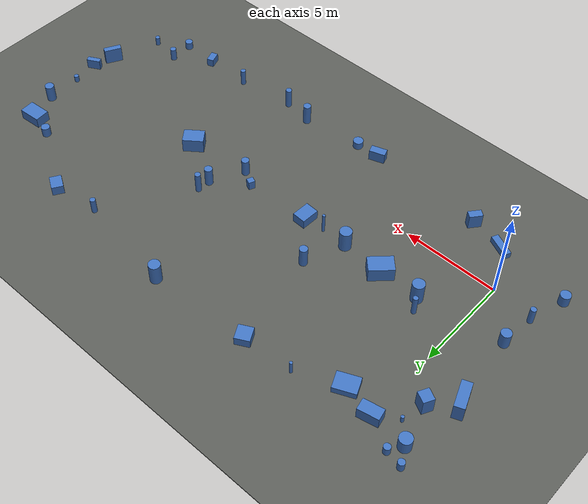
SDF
<sdf version="1.9">
 <world name="default">
  <model name="track_feature">
   <static>true</static>
   <link name="feature_link">
    <collision name="feat_box_1_collision">
     <pose>24.670382 7.119994 0.289913 0.000000 0.000000 0.071686</pose>
     <geometry><box><size>1.201036 0.794350 0.579826</size></box></geometry>
    </collision>
    <visual name="feat_box_1_visual">
     <pose>24.670382 7.119994 0.289913 0.000000 0.000000 0.071686</pose>
     <geometry><box><size>1.201036 0.794350 0.579826</size></box></geometry>
     <material><ambient>0.25 0.45 0.75 1</ambient><diffuse>0.25 0.45 0.75 1</diffuse></material>
    </visual>
    <collision name="feat_box_3_collision">
     <pose>-1.304008 7.081642 0.461759 0.000000 0.000000 -2.052050</pose>
     <geometry><box><size>0.569174 0.608548 0.923518</size></box></geometry>
    </collision>
    <visual name="feat_box_3_visual">
     <pose>-1.304008 7.081642 0.461759 0.000000 0.000000 -2.052050</pose>
     <geometry><box><size>0.569174 0.608548 0.923518</size></box></geometry>
     <material><ambient>0.25 0.45 0.75 1</ambient><diffuse>0.25 0.45 0.75 1</diffuse></material>
    </visual>
    <collision name="feat_box_4_collision">
     <pose>1.746492 8.575024 0.182613 0.000000 0.000000 0.418718</pose>
     <geometry><box><size>1.158032 0.896006 0.365227</size></box></geometry>
    </collision>
    <visual name="feat_box_4_visual">
     <pose>1.746492 8.575024 0.182613 0.000000 0.000000 0.418718</pose>
     <geometry><box><size>1.158032 0.896006 0.365227</size></box></geometry>
     <material><ambient>0.25 0.45 0.75 1</ambient><diffuse>0.25 0.45 0.75 1</diffuse></material>
    </visual>
    <collision name="feat_box_8_collision">
     <pose>19.882940 9.591676 0.262900 0.000000 0.000000 -0.544129</pose>
     <geometry><box><size>0.775148 0.607738 0.525799</size></box></geometry>
    </collision>
    <visual name="feat_box_8_visual">
     <pose>19.882940 9.591676 0.262900 0.000000 0.000000 -0.544129</pose>
     <geometry><box><size>0.775148 0.607738 0.525799</size></box></geometry>
     <material><ambient>0.25 0.45 0.75 1</ambient><diffuse>0.25 0.45 0.75 1</diffuse></material>
    </visual>
    <collision name="feat_box_10_collision">
     <pose>20.884848 -2.518587 0.225866 0.000000 0.000000 1.904871</pose>
     <geometry><box><size>0.613634 0.374339 0.451733</size></box></geometry>
    </collision>
    <visual name="feat_box_10_visual">
     <pose>20.884848 -2.518587 0.225866 0.000000 0.000000 1.904871</pose>
     <geometry><box><size>0.613634 0.374339 0.451733</size></box></geometry>
     <material><ambient>0.25 0.45 0.75 1</ambient><diffuse>0.25 0.45 0.75 1</diffuse></material>
    </visual>
    <collision name="feat_box_12_collision">
     <pose>12.782914 2.903730 0.249128 0.000000 0.000000 -0.400176</pose>
     <geometry><box><size>0.319425 0.347119 0.498255</size></box></geometry>
    </collision>
    <visual name="feat_box_12_visual">
     <pose>12.782914 2.903730 0.249128 0.000000 0.000000 -0.400176</pose>
     <geometry><box><size>0.319425 0.347119 0.498255</size></box></geometry>
     <material><ambient>0.25 0.45 0.75 1</ambient><diffuse>0.25 0.45 0.75 1</diffuse></material>
    </visual>
    <collision name="feat_box_14_collision">
     <pose>9.296915 -2.962423 0.303799 0.000000 0.000000 0.321960</pose>
     <geometry><box><size>0.841646 0.431589 0.607598</size></box></geometry>
    </collision>
    <visual name="feat_box_14_visual">
     <pose>9.296915 -2.962423 0.303799 0.000000 0.000000 0.321960</pose>
     <geometry><box><size>0.841646 0.431589 0.607598</size></box></geometry>
     <material><ambient>0.25 0.45 0.75 1</ambient><diffuse>0.25 0.45 0.75 1</diffuse></material>
    </visual>
    <collision name="feat_box_15_collision">
     <pose>9.325273 2.667936 0.261766 0.000000 0.000000 1.524873</pose>
     <geometry><box><size>0.968476 0.715589 0.523532</size></box></geometry>
    </collision>
    <visual name="feat_box_15_visual">
     <pose>9.325273 2.667936 0.261766 0.000000 0.000000 1.524873</pose>
     <geometry><box><size>0.968476 0.715589 0.523532</size></box></geometry>
     <material><ambient>0.25 0.45 0.75 1</ambient><diffuse>0.25 0.45 0.75 1</diffuse></material>
    </visual>
    <collision name="feat_box_16_collision">
     <pose>4.525236 2.805219 0.394589 0.000000 0.000000 -2.368869</pose>
     <geometry><box><size>1.281059 0.846166 0.789179</size></box></geometry>
    </collision>
    <visual name="feat_box_16_visual">
     <pose>4.525236 2.805219 0.394589 0.000000 0.000000 -2.368869</pose>
     <geometry><box><size>1.281059 0.846166 0.789179</size></box></geometry>
     <material><ambient>0.25 0.45 0.75 1</ambient><diffuse>0.25 0.45 0.75 1</diffuse></material>
    </visual>
    <collision name="feat_box_22_collision">
     <pose>-2.432826 6.007820 0.485832 0.000000 0.000000 1.939342</pose>
     <geometry><box><size>1.375204 0.515239 0.971664</size></box></geometry>
    </collision>
    <visual name="feat_box_22_visual">
     <pose>-2.432826 6.007820 0.485832 0.000000 0.000000 1.939342</pose>
     <geometry><box><size>1.375204 0.515239 0.971664</size></box></geometry>
     <material><ambient>0.25 0.45 0.75 1</ambient><diffuse>0.25 0.45 0.75 1</diffuse></material>
    </visual>
    <collision name="feat_box_24_collision">
     <pose>1.184153 -2.251332 0.168702 0.000000 0.000000 2.707028</pose>
     <geometry><box><size>1.219810 0.376309 0.337403</size></box></geometry>
    </collision>
    <visual name="feat_box_24_visual">
     <pose>1.184153 -2.251332 0.168702 0.000000 0.000000 2.707028</pose>
     <geometry><box><size>1.219810 0.376309 0.337403</size></box></geometry>
     <material><ambient>0.25 0.45 0.75 1</ambient><diffuse>0.25 0.45 0.75 1</diffuse></material>
    </visual>
    <collision name="feat_box_26_collision">
     <pose>0.078908 9.018379 0.329072 0.000000 0.000000 -2.935244</pose>
     <geometry><box><size>1.074119 0.600067 0.658145</size></box></geometry>
    </collision>
    <visual name="feat_box_26_visual">
     <pose>0.078908 9.018379 0.329072 0.000000 0.000000 -2.935244</pose>
     <geometry><box><size>1.074119 0.600067 0.658145</size></box></geometry>
     <material><ambient>0.25 0.45 0.75 1</ambient><diffuse>0.25 0.45 0.75 1</diffuse></material>
    </visual>
    <collision name="feat_box_27_collision">
     <pose>25.520080 2.218776 0.282142 0.000000 0.000000 2.057424</pose>
     <geometry><box><size>0.278405 0.743167 0.564284</size></box></geometry>
    </collision>
    <visual name="feat_box_27_visual">
     <pose>25.520080 2.218776 0.282142 0.000000 0.000000 2.057424</pose>
     <geometry><box><size>0.278405 0.743167 0.564284</size></box></geometry>
     <material><ambient>0.25 0.45 0.75 1</ambient><diffuse>0.25 0.45 0.75 1</diffuse></material>
    </visual>
    <collision name="feat_box_30_collision">
     <pose>25.172809 1.107790 0.434652 0.000000 0.000000 -2.059937</pose>
     <geometry><box><size>0.949348 0.307129 0.869305</size></box></geometry>
    </collision>
    <visual name="feat_box_30_visual">
     <pose>25.172809 1.107790 0.434652 0.000000 0.000000 -2.059937</pose>
     <geometry><box><size>0.949348 0.307129 0.869305</size></box></geometry>
     <material><ambient>0.25 0.45 0.75 1</ambient><diffuse>0.25 0.45 0.75 1</diffuse></material>
    </visual>
    <collision name="feat_box_38_collision">
     <pose>16.936390 2.815702 0.392116 0.000000 0.000000 0.655062</pose>
     <geometry><box><size>1.099740 0.798922 0.784232</size></box></geometry>
    </collision>
    <visual name="feat_box_38_visual">
     <pose>16.936390 2.815702 0.392116 0.000000 0.000000 0.655062</pose>
     <geometry><box><size>1.099740 0.798922 0.784232</size></box></geometry>
     <material><ambient>0.25 0.45 0.75 1</ambient><diffuse>0.25 0.45 0.75 1</diffuse></material>
    </visual>
    <collision name="feat_box_42_collision">
     <pose>6.700082 9.763759 0.243580 0.000000 0.000000 2.055882</pose>
     <geometry><box><size>0.780557 0.762318 0.487160</size></box></geometry>
    </collision>
    <visual name="feat_box_42_visual">
     <pose>6.700082 9.763759 0.243580 0.000000 0.000000 2.055882</pose>
     <geometry><box><size>0.780557 0.762318 0.487160</size></box></geometry>
     <material><ambient>0.25 0.45 0.75 1</ambient><diffuse>0.25 0.45 0.75 1</diffuse></material>
    </visual>
    <collision name="feat_box_45_collision">
     <pose>3.046522 -2.645402 0.409731 0.000000 0.000000 -0.673406</pose>
     <geometry><box><size>0.386037 0.688391 0.819462</size></box></geometry>
    </collision>
    <visual name="feat_box_45_visual">
     <pose>3.046522 -2.645402 0.409731 0.000000 0.000000 -0.673406</pose>
     <geometry><box><size>0.386037 0.688391 0.819462</size></box></geometry>
     <material><ambient>0.25 0.45 0.75 1</ambient><diffuse>0.25 0.45 0.75 1</diffuse></material>
    </visual>
    <collision name="feat_cyl_2_collision">
     <pose>6.796907 2.657277 0.569344 0.000000 0.000000 0.000000</pose>
     <geometry><cylinder><radius>0.313919</radius><length>1.138689</length></cylinder></geometry>
    </collision>
    <visual name="feat_cyl_2_visual">
     <pose>6.796907 2.657277 0.569344 0.000000 0.000000 0.000000</pose>
     <geometry><cylinder><radius>0.313919</radius><length>1.138689</length></cylinder></geometry>
     <material><ambient>0.25 0.45 0.75 1</ambient><diffuse>0.25 0.45 0.75 1</diffuse></material>
    </visual>
    <collision name="feat_cyl_5_collision">
     <pose>22.762982 -1.287806 0.351089 0.000000 0.000000 0.000000</pose>
     <geometry><cylinder><radius>0.162722</radius><length>0.702178</length></cylinder></geometry>
    </collision>
    <visual name="feat_cyl_5_visual">
     <pose>22.762982 -1.287806 0.351089 0.000000 0.000000 0.000000</pose>
     <geometry><cylinder><radius>0.162722</radius><length>0.702178</length></cylinder></geometry>
     <material><ambient>0.25 0.45 0.75 1</ambient><diffuse>0.25 0.45 0.75 1</diffuse></material>
    </visual>
    <collision name="feat_cyl_6_collision">
     <pose>22.810680 -2.553603 0.216048 0.000000 0.000000 0.000000</pose>
     <geometry><cylinder><radius>0.207859</radius><length>0.432096</length></cylinder></geometry>
    </collision>
    <visual name="feat_cyl_6_visual">
     <pose>22.810680 -2.553603 0.216048 0.000000 0.000000 0.000000</pose>
     <geometry><cylinder><radius>0.207859</radius><length>0.432096</length></cylinder></geometry>
     <material><ambient>0.25 0.45 0.75 1</ambient><diffuse>0.25 0.45 0.75 1</diffuse></material>
    </visual>
    <collision name="feat_cyl_7_collision">
     <pose>25.304169 5.510014 0.454906 0.000000 0.000000 0.000000</pose>
     <geometry><cylinder><radius>0.244063</radius><length>0.909812</length></cylinder></geometry>
    </collision>
    <visual name="feat_cyl_7_visual">
     <pose>25.304169 5.510014 0.454906 0.000000 0.000000 0.000000</pose>
     <geometry><cylinder><radius>0.244063</radius><length>0.909812</length></cylinder></geometry>
     <material><ambient>0.25 0.45 0.75 1</ambient><diffuse>0.25 0.45 0.75 1</diffuse></material>
    </visual>
    <collision name="feat_cyl_9_collision">
     <pose>24.348142 -1.549119 0.248078 0.000000 0.000000 0.000000</pose>
     <geometry><cylinder><radius>0.124656</radius><length>0.496155</length></cylinder></geometry>
    </collision>
    <visual name="feat_cyl_9_visual">
     <pose>24.348142 -1.549119 0.248078 0.000000 0.000000 0.000000</pose>
     <geometry><cylinder><radius>0.124656</radius><length>0.496155</length></cylinder></geometry>
     <material><ambient>0.25 0.45 0.75 1</ambient><diffuse>0.25 0.45 0.75 1</diffuse></material>
    </visual>
    <collision name="feat_cyl_11_collision">
     <pose>25.381425 3.652828 0.181691 0.000000 0.000000 0.000000</pose>
     <geometry><cylinder><radius>0.127842</radius><length>0.363383</length></cylinder></geometry>
    </collision>
    <visual name="feat_cyl_11_visual">
     <pose>25.381425 3.652828 0.181691 0.000000 0.000000 0.000000</pose>
     <geometry><cylinder><radius>0.127842</radius><length>0.363383</length></cylinder></geometry>
     <material><ambient>0.25 0.45 0.75 1</ambient><diffuse>0.25 0.45 0.75 1</diffuse></material>
    </visual>
    <collision name="feat_cyl_13_collision">
     <pose>18.424620 -2.463162 0.456217 0.000000 0.000000 0.000000</pose>
     <geometry><cylinder><radius>0.134088</radius><length>0.912434</length></cylinder></geometry>
    </collision>
    <visual name="feat_cyl_13_visual">
     <pose>18.424620 -2.463162 0.456217 0.000000 0.000000 0.000000</pose>
     <geometry><cylinder><radius>0.134088</radius><length>0.912434</length></cylinder></geometry>
     <material><ambient>0.25 0.45 0.75 1</ambient><diffuse>0.25 0.45 0.75 1</diffuse></material>
    </visual>
    <collision name="feat_cyl_17_collision">
     <pose>2.019079 3.482684 0.539610 0.000000 0.000000 0.000000</pose>
     <geometry><cylinder><radius>0.125287</radius><length>1.079220</length></cylinder></geometry>
    </collision>
    <visual name="feat_cyl_17_visual">
     <pose>2.019079 3.482684 0.539610 0.000000 0.000000 0.000000</pose>
     <geometry><cylinder><radius>0.125287</radius><length>1.079220</length></cylinder></geometry>
     <material><ambient>0.25 0.45 0.75 1</ambient><diffuse>0.25 0.45 0.75 1</diffuse></material>
    </visual>
    <collision name="feat_cyl_18_collision">
     <pose>-1.850457 9.138628 0.375096 0.000000 0.000000 0.000000</pose>
     <geometry><cylinder><radius>0.318341</radius><length>0.750191</length></cylinder></geometry>
    </collision>
    <visual name="feat_cyl_18_visual">
     <pose>-1.850457 9.138628 0.375096 0.000000 0.000000 0.000000</pose>
     <geometry><cylinder><radius>0.318341</radius><length>0.750191</length></cylinder></geometry>
     <material><ambient>0.25 0.45 0.75 1</ambient><diffuse>0.25 0.45 0.75 1</diffuse></material>
    </visual>
    <collision name="feat_cyl_19_collision">
     <pose>17.385374 9.303224 0.418038 0.000000 0.000000 0.000000</pose>
     <geometry><cylinder><radius>0.144082</radius><length>0.836075</length></cylinder></geometry>
    </collision>
    <visual name="feat_cyl_19_visual">
     <pose>17.385374 9.303224 0.418038 0.000000 0.000000 0.000000</pose>
     <geometry><cylinder><radius>0.144082</radius><length>0.836075</length></cylinder></geometry>
     <material><ambient>0.25 0.45 0.75 1</ambient><diffuse>0.25 0.45 0.75 1</diffuse></material>
    </visual>
    <collision name="feat_cyl_20_collision">
     <pose>-2.184360 0.317083 0.462429 0.000000 0.000000 0.000000</pose>
     <geometry><cylinder><radius>0.146290</radius><length>0.924858</length></cylinder></geometry>
    </collision>
    <visual name="feat_cyl_20_visual">
     <pose>-2.184360 0.317083 0.462429 0.000000 0.000000 0.000000</pose>
     <geometry><cylinder><radius>0.146290</radius><length>0.924858</length></cylinder></geometry>
     <material><ambient>0.25 0.45 0.75 1</ambient><diffuse>0.25 0.45 0.75 1</diffuse></material>
    </visual>
    <collision name="feat_cyl_21_collision">
     <pose>-1.443884 9.821979 0.231418 0.000000 0.000000 0.000000</pose>
     <geometry><cylinder><radius>0.172953</radius><length>0.462836</length></cylinder></geometry>
    </collision>
    <visual name="feat_cyl_21_visual">
     <pose>-1.443884 9.821979 0.231418 0.000000 0.000000 0.000000</pose>
     <geometry><cylinder><radius>0.172953</radius><length>0.462836</length></cylinder></geometry>
     <material><ambient>0.25 0.45 0.75 1</ambient><diffuse>0.25 0.45 0.75 1</diffuse></material>
    </visual>
    <collision name="feat_cyl_23_collision">
     <pose>12.047652 10.137508 0.566718 0.000000 0.000000 0.000000</pose>
     <geometry><cylinder><radius>0.303144</radius><length>1.133436</length></cylinder></geometry>
    </collision>
    <visual name="feat_cyl_23_visual">
     <pose>12.047652 10.137508 0.566718 0.000000 0.000000 0.000000</pose>
     <geometry><cylinder><radius>0.303144</radius><length>1.133436</length></cylinder></geometry>
     <material><ambient>0.25 0.45 0.75 1</ambient><diffuse>0.25 0.45 0.75 1</diffuse></material>
    </visual>
    <collision name="feat_cyl_25_collision">
     <pose>4.027146 9.621527 0.362186 0.000000 0.000000 0.000000</pose>
     <geometry><cylinder><radius>0.080493</radius><length>0.724371</length></cylinder></geometry>
    </collision>
    <visual name="feat_cyl_25_visual">
     <pose>4.027146 9.621527 0.362186 0.000000 0.000000 0.000000</pose>
     <geometry><cylinder><radius>0.080493</radius><length>0.724371</length></cylinder></geometry>
     <material><ambient>0.25 0.45 0.75 1</ambient><diffuse>0.25 0.45 0.75 1</diffuse></material>
    </visual>
    <collision name="feat_cyl_28_collision">
     <pose>-1.031600 8.250912 0.176897 0.000000 0.000000 0.000000</pose>
     <geometry><cylinder><radius>0.081923</radius><length>0.353795</length></cylinder></geometry>
    </collision>
    <visual name="feat_cyl_28_visual">
     <pose>-1.031600 8.250912 0.176897 0.000000 0.000000 0.000000</pose>
     <geometry><cylinder><radius>0.081923</radius><length>0.353795</length></cylinder></geometry>
     <material><ambient>0.25 0.45 0.75 1</ambient><diffuse>0.25 0.45 0.75 1</diffuse></material>
    </visual>
    <collision name="feat_cyl_29_collision">
     <pose>14.584679 4.825651 0.569412 0.000000 0.000000 0.000000</pose>
     <geometry><cylinder><radius>0.153891</radius><length>1.138825</length></cylinder></geometry>
    </collision>
    <visual name="feat_cyl_29_visual">
     <pose>14.584679 4.825651 0.569412 0.000000 0.000000 0.000000</pose>
     <geometry><cylinder><radius>0.153891</radius><length>1.138825</length></cylinder></geometry>
     <material><ambient>0.25 0.45 0.75 1</ambient><diffuse>0.25 0.45 0.75 1</diffuse></material>
    </visual>
    <collision name="feat_cyl_31_collision">
     <pose>14.539903 4.121155 0.509649 0.000000 0.000000 0.000000</pose>
     <geometry><cylinder><radius>0.208698</radius><length>1.019298</length></cylinder></geometry>
    </collision>
    <visual name="feat_cyl_31_visual">
     <pose>14.539903 4.121155 0.509649 0.000000 0.000000 0.000000</pose>
     <geometry><cylinder><radius>0.208698</radius><length>1.019298</length></cylinder></geometry>
     <material><ambient>0.25 0.45 0.75 1</ambient><diffuse>0.25 0.45 0.75 1</diffuse></material>
    </visual>
    <collision name="feat_cyl_32_collision">
     <pose>-2.741703 -1.588008 0.307820 0.000000 0.000000 0.000000</pose>
     <geometry><cylinder><radius>0.265505</radius><length>0.615639</length></cylinder></geometry>
    </collision>
    <visual name="feat_cyl_32_visual">
     <pose>-2.741703 -1.588008 0.307820 0.000000 0.000000 0.000000</pose>
     <geometry><cylinder><radius>0.265505</radius><length>0.615639</length></cylinder></geometry>
     <material><ambient>0.25 0.45 0.75 1</ambient><diffuse>0.25 0.45 0.75 1</diffuse></material>
    </visual>
    <collision name="feat_cyl_33_collision">
     <pose>2.374849 2.801134 0.579372 0.000000 0.000000 0.000000</pose>
     <geometry><cylinder><radius>0.312335</radius><length>1.158744</length></cylinder></geometry>
    </collision>
    <visual name="feat_cyl_33_visual">
     <pose>2.374849 2.801134 0.579372 0.000000 0.000000 0.000000</pose>
     <geometry><cylinder><radius>0.312335</radius><length>1.158744</length></cylinder></geometry>
     <material><ambient>0.25 0.45 0.75 1</ambient><diffuse>0.25 0.45 0.75 1</diffuse></material>
    </visual>
    <collision name="feat_cyl_34_collision">
     <pose>8.212687 2.613264 0.566339 0.000000 0.000000 0.000000</pose>
     <geometry><cylinder><radius>0.077354</radius><length>1.132679</length></cylinder></geometry>
    </collision>
    <visual name="feat_cyl_34_visual">
     <pose>8.212687 2.613264 0.566339 0.000000 0.000000 0.000000</pose>
     <geometry><cylinder><radius>0.077354</radius><length>1.132679</length></cylinder></geometry>
     <material><ambient>0.25 0.45 0.75 1</ambient><diffuse>0.25 0.45 0.75 1</diffuse></material>
    </visual>
    <collision name="feat_cyl_35_collision">
     <pose>15.389234 -2.843631 0.542914 0.000000 0.000000 0.000000</pose>
     <geometry><cylinder><radius>0.161883</radius><length>1.085828</length></cylinder></geometry>
    </collision>
    <visual name="feat_cyl_35_visual">
     <pose>15.389234 -2.843631 0.542914 0.000000 0.000000 0.000000</pose>
     <geometry><cylinder><radius>0.161883</radius><length>1.085828</length></cylinder></geometry>
     <material><ambient>0.25 0.45 0.75 1</ambient><diffuse>0.25 0.45 0.75 1</diffuse></material>
    </visual>
    <collision name="feat_cyl_36_collision">
     <pose>-2.307687 9.988131 0.250688 0.000000 0.000000 0.000000</pose>
     <geometry><cylinder><radius>0.170096</radius><length>0.501376</length></cylinder></geometry>
    </collision>
    <visual name="feat_cyl_36_visual">
     <pose>-2.307687 9.988131 0.250688 0.000000 0.000000 0.000000</pose>
     <geometry><cylinder><radius>0.170096</radius><length>0.501376</length></cylinder></geometry>
     <material><ambient>0.25 0.45 0.75 1</ambient><diffuse>0.25 0.45 0.75 1</diffuse></material>
    </visual>
    <collision name="feat_cyl_37_collision">
     <pose>13.826880 -2.565178 0.561005 0.000000 0.000000 0.000000</pose>
     <geometry><cylinder><radius>0.202531</radius><length>1.122009</length></cylinder></geometry>
    </collision>
    <visual name="feat_cyl_37_visual">
     <pose>13.826880 -2.565178 0.561005 0.000000 0.000000 0.000000</pose>
     <geometry><cylinder><radius>0.202531</radius><length>1.122009</length></cylinder></geometry>
     <material><ambient>0.25 0.45 0.75 1</ambient><diffuse>0.25 0.45 0.75 1</diffuse></material>
    </visual>
    <collision name="feat_cyl_39_collision">
     <pose>7.605804 4.766729 0.541848 0.000000 0.000000 0.000000</pose>
     <geometry><cylinder><radius>0.210322</radius><length>1.083696</length></cylinder></geometry>
    </collision>
    <visual name="feat_cyl_39_visual">
     <pose>7.605804 4.766729 0.541848 0.000000 0.000000 0.000000</pose>
     <geometry><cylinder><radius>0.210322</radius><length>1.083696</length></cylinder></geometry>
     <material><ambient>0.25 0.45 0.75 1</ambient><diffuse>0.25 0.45 0.75 1</diffuse></material>
    </visual>
    <collision name="feat_cyl_40_collision">
     <pose>23.336721 7.470433 0.272308 0.000000 0.000000 0.000000</pose>
     <geometry><cylinder><radius>0.233171</radius><length>0.544616</length></cylinder></geometry>
    </collision>
    <visual name="feat_cyl_40_visual">
     <pose>23.336721 7.470433 0.272308 0.000000 0.000000 0.000000</pose>
     <geometry><cylinder><radius>0.233171</radius><length>0.544616</length></cylinder></geometry>
     <material><ambient>0.25 0.45 0.75 1</ambient><diffuse>0.25 0.45 0.75 1</diffuse></material>
    </visual>
    <collision name="feat_cyl_41_collision">
     <pose>-1.987770 2.135956 0.422620 0.000000 0.000000 0.000000</pose>
     <geometry><cylinder><radius>0.264908</radius><length>0.845240</length></cylinder></geometry>
    </collision>
    <visual name="feat_cyl_41_visual">
     <pose>-1.987770 2.135956 0.422620 0.000000 0.000000 0.000000</pose>
     <geometry><cylinder><radius>0.264908</radius><length>0.845240</length></cylinder></geometry>
     <material><ambient>0.25 0.45 0.75 1</ambient><diffuse>0.25 0.45 0.75 1</diffuse></material>
    </visual>
    <collision name="feat_cyl_43_collision">
     <pose>10.628713 -2.985288 0.204111 0.000000 0.000000 0.000000</pose>
     <geometry><cylinder><radius>0.265544</radius><length>0.408223</length></cylinder></geometry>
    </collision>
    <visual name="feat_cyl_43_visual">
     <pose>10.628713 -2.985288 0.204111 0.000000 0.000000 0.000000</pose>
     <geometry><cylinder><radius>0.265544</radius><length>0.408223</length></cylinder></geometry>
     <material><ambient>0.25 0.45 0.75 1</ambient><diffuse>0.25 0.45 0.75 1</diffuse></material>
    </visual>
    <collision name="feat_cyl_44_collision">
     <pose>13.641346 2.385371 0.471545 0.000000 0.000000 0.000000</pose>
     <geometry><cylinder><radius>0.201608</radius><length>0.943089</length></cylinder></geometry>
    </collision>
    <visual name="feat_cyl_44_visual">
     <pose>13.641346 2.385371 0.471545 0.000000 0.000000 0.000000</pose>
     <geometry><cylinder><radius>0.201608</radius><length>0.943089</length></cylinder></geometry>
     <material><ambient>0.25 0.45 0.75 1</ambient><diffuse>0.25 0.45 0.75 1</diffuse></material>
    </visual>
   </link>
  </model>
  <model name="track_ground">
   <static>true</static>
   <link name="ground_link">
    <collision name="ground_collision">
     <pose>11.494837 3.293436 -0.025000 0.000000 0.000000 0.000000</pose>
     <geometry><box><size>80.000000 80.000000 0.050000</size></box></geometry>
     <surface>
      <friction><ode><mu>1.2</mu><mu2>1.2</mu2></ode></friction>
      <contact><ode><kp>100000.0</kp><kd>10.0</kd></ode></contact>
     </surface>
    </collision>
    <visual name="ground_visual">
     <pose>11.494837 3.293436 -0.025000 0.000000 0.000000 0.000000</pose>
     <geometry><box><size>80.000000 80.000000 0.050000</size></box></geometry>
     <material><ambient>0.35 0.36 0.34 1</ambient><diffuse>0.35 0.36 0.34 1</diffuse></material>
    </visual>
   </link>
  </model>
 </world>
</sdf>
